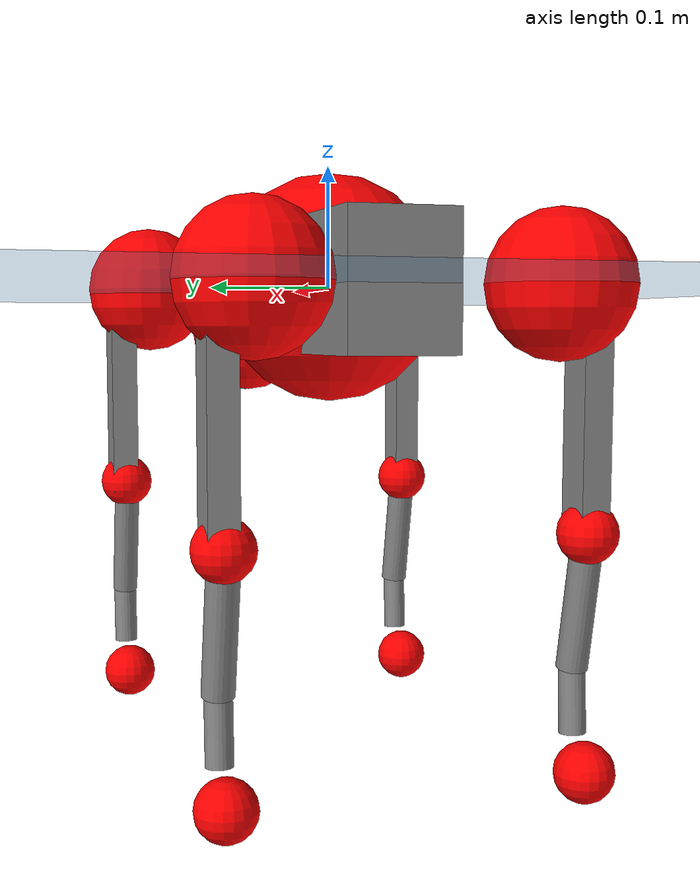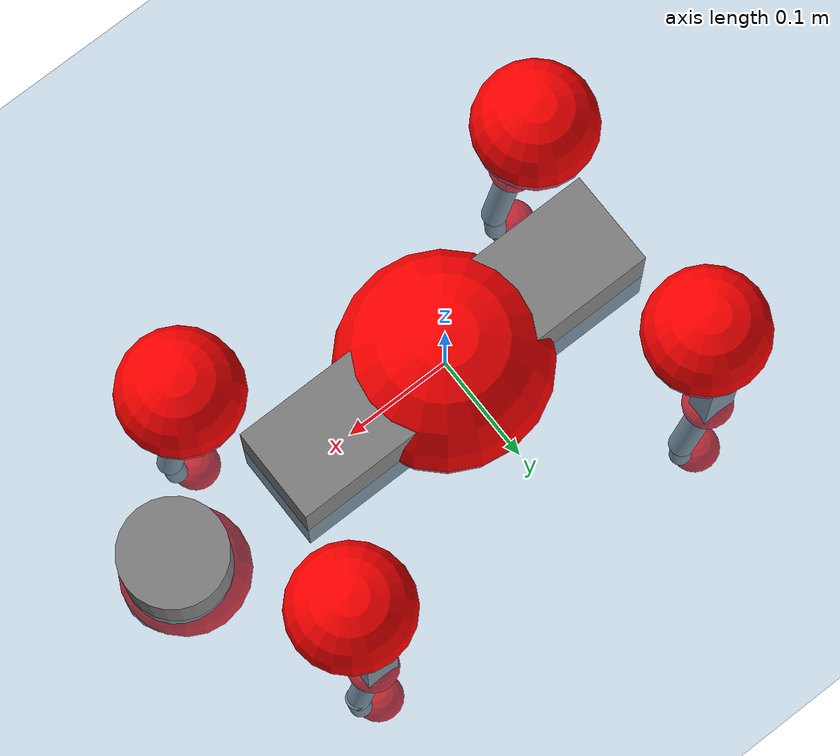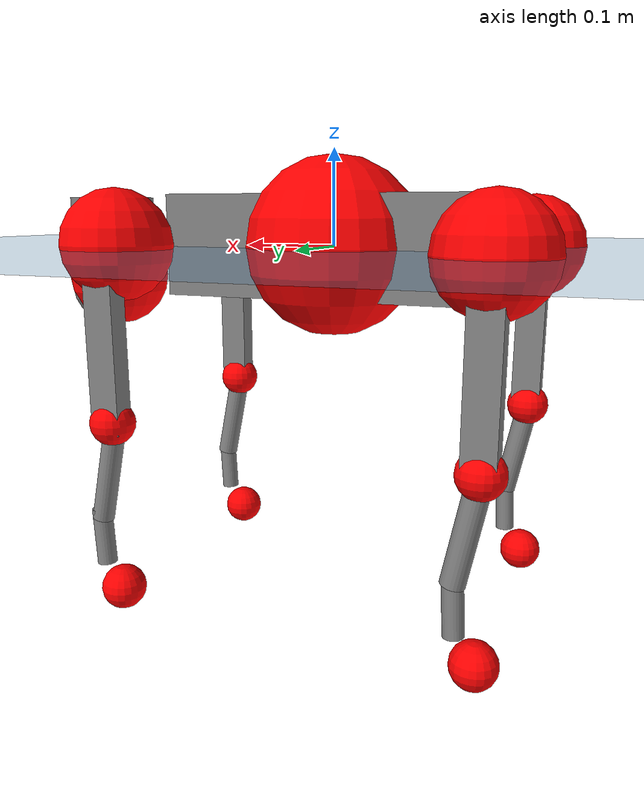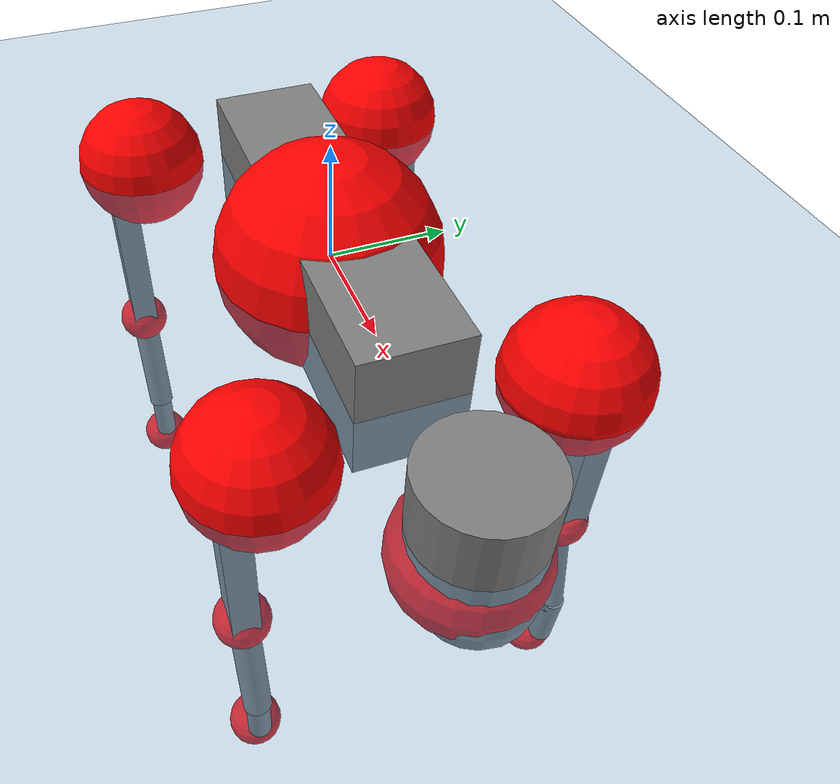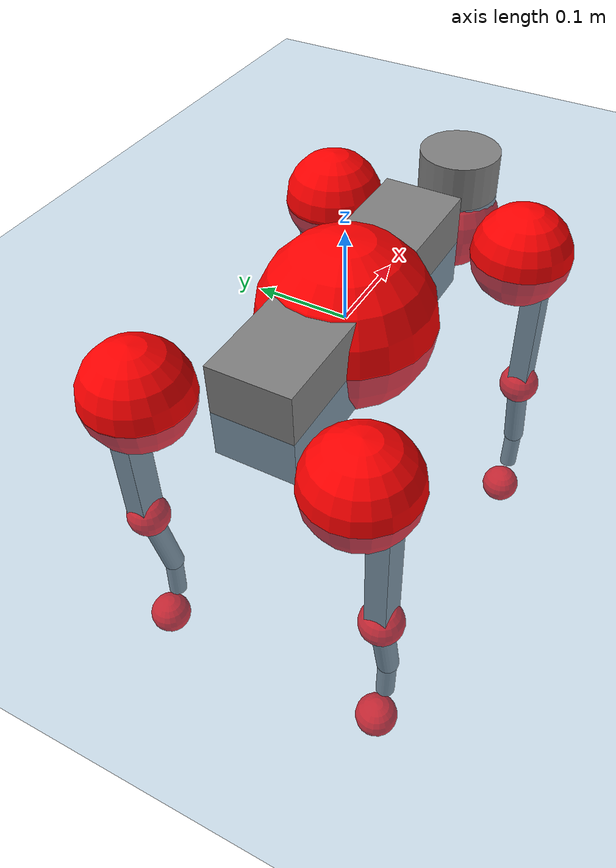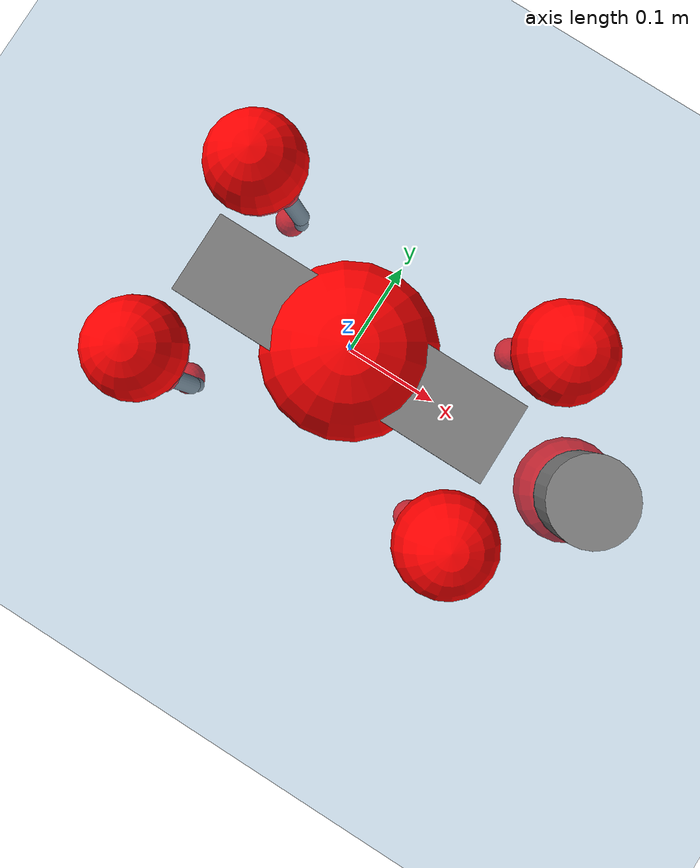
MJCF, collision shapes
<mujoco model="go2">
  <compiler angle="radian" assetdir="assets" balanceinertia="true" inertiafromgeom="false"/>

  <option timestep="0.005" density="1.2" viscosity="2e-05"/>

  <size nkey="1"/>

  <visual>
    <quality shadowsize="8192"/>
    <map shadowclip="0.5"/>
  </visual>

  <default>
    <default class="/">
      <geom contype="0" conaffinity="0" group="1" solref="-1000 -80"/>
      <site size="0.01 0.005 0.005" group="5"/>
      <general forcelimited="true" biastype="affine" gainprm="20" biasprm="0 -20 -0.5"/>
      <default class="go2">
        <joint armature="0.01" damping="0.01" frictionloss="0.2"/>
        <geom condim="1" margin="0.001"/>
        <default class="visual">
          <geom type="mesh" group="2"/>
        </default>
        <default class="collision">
          <geom group="3"/>
          <default class="foot">
            <geom size="0.022 0 0" condim="6" priority="1" friction="0.8 0.02 0.01" solimp="0.015 1 0.022"/>
          </default>
        </default>
        <default class="reward_collision_sphere">
          <geom group="5" rgba="1 0 0 1"/>
        </default>
      </default>
    </default>
  </default>

  <asset>
    <texture type="skybox" colorspace="auto" name="//unnamed_texture_0" builtin="gradient" rgb1="0.95 0.95 0.95" rgb2="0.95 0.95 0.95" width="100" height="600"/>
    <texture type="2d" colorspace="auto" name="texplane" builtin="checker" rgb1="0.345 0.575 0.748" rgb2="0.345 0.575 0.748" markrgb="1 1 1" width="512" height="512"/>
    <material name="MatPlane" class="/" texture="texplane" texuniform="true" texrepeat="2 2" specular="0.9"/>
    <material name="metal" class="/" rgba="0.9 0.95 0.95 1"/>
    <material name="black" class="/" rgba="0 0 0 1"/>
    <material name="white" class="/"/>
    <material name="gray" class="/" rgba="0.671705 0.692426 0.77427 1"/>
    <mesh name="base_0" class="/" file="base_0.obj"/>
    <mesh name="base_1" class="/" file="base_1.obj"/>
    <mesh name="base_2" class="/" file="base_2.obj"/>
    <mesh name="base_3" class="/" file="base_3.obj"/>
    <mesh name="base_4" class="/" file="base_4.obj"/>
    <mesh name="hip_0" class="/" file="hip_0.obj"/>
    <mesh name="hip_1" class="/" file="hip_1.obj"/>
    <mesh name="thigh_0" class="/" file="thigh_0.obj"/>
    <mesh name="thigh_1" class="/" file="thigh_1.obj"/>
    <mesh name="thigh_mirror_0" class="/" file="thigh_mirror_0.obj"/>
    <mesh name="thigh_mirror_1" class="/" file="thigh_mirror_1.obj"/>
    <mesh name="calf_0" class="/" file="calf_0.obj"/>
    <mesh name="calf_1" class="/" file="calf_1.obj"/>
    <mesh name="calf_mirror_0" class="/" file="calf_mirror_0.obj"/>
    <mesh name="calf_mirror_1" class="/" file="calf_mirror_1.obj"/>
    <mesh name="foot" class="/" file="foot.obj"/>
  </asset>

  <worldbody>
    <geom name="floor" class="/" size="100 100 0.125" type="plane" group="0" material="MatPlane"/>
    <light name="toplight_shadow" class="/" pos="0 0 5" dir="0.0990148 0.0990148 -0.990148" type="directional" ambient="0.04 0.04 0.04" diffuse="0.55 0.55 0.55" specular="0.12 0.12 0.12"/>
    <light name="toplight_fill" class="/" pos="0 0 5" dir="0.0990148 0.0990148 -0.990148" type="directional" castshadow="false" ambient="0.04 0.04 0.04" diffuse="0.3 0.3 0.3" specular="0.08 0.08 0.08"/>
    <body name="trunk" childclass="go2" pos="-9.71655e-05 -0.0013161 0.000548355" quat="1 -7.06558e-06 -1.13328e-06 3.73099e-05">
      <inertial pos="0.0196251 -0.00172399 -0.00463705" quat="-0.0102553 0.713448 -0.0100799 0.700561" mass="5.74566" diaginertia="0.0974318 0.0921535 0.0114932"/>
      <joint name="//unnamed_joint_0" type="free" armature="0" damping="0" frictionloss="0"/>
      <geom name="//unnamed_geom_1" class="visual" material="black" mesh="base_0"/>
      <geom name="//unnamed_geom_2" class="visual" material="black" mesh="base_1"/>
      <geom name="//unnamed_geom_3" class="visual" material="black" mesh="base_2"/>
      <geom name="//unnamed_geom_4" class="visual" material="white" mesh="base_3"/>
      <geom name="//unnamed_geom_5" class="visual" material="gray" mesh="base_4"/>
      <geom name="trunk_1" class="collision" size="0.17735 0.0440783 0.0537425" type="box"/>
      <geom name="trunk_2" class="collision" size="0.0471425 0.0424283" pos="0.279381 0 0.00860538" type="cylinder"/>
      <geom name="trunk_3" class="collision" size="0.044314" pos="0.287223 0 -0.0516323"/>
      <geom name="//unnamed_geom_9" class="reward_collision_sphere" size="0.094285"/>
      <geom name="//unnamed_geom_10" class="reward_collision_sphere" size="0.056571" pos="0.27448 0 -0.0387242"/>
      <site name="imu" pos="-0.0192931 -0.000486134 0.0298755" size="0.0094285"/>
      <camera name="track" pos="0 -1.97546 0" quat="0.707107 0.707107 0 0" mode="trackcom"/>
      <camera name="ego_camera" pos="0.305849 0 0.0387242" quat="-0.5 -0.5 0.5 0.5"/>
      <body name="FL_hip" pos="0.189581 0.0485398 0.00296084" quat="1 -0.00051614 -0.000322532 0.000399583">
        <inertial pos="-0.00524522 0.00216278 -0.000231166" quat="0.496454 0.499875 0.503808 0.499835" mass="0.560437" diaginertia="0.000799318 0.000550012 0.00022805"/>
        <joint name="FL_hip_joint" pos="0 0 0" axis="0.999999 0.00149796 -0.00056141" stiffness="0.0138892" range="-0.997914 1.04111" armature="0.0092145" damping="0" frictionloss="0.194355"/>
        <geom name="//unnamed_geom_11" class="visual" material="metal" mesh="hip_0"/>
        <geom name="//unnamed_geom_12" class="visual" material="gray" mesh="hip_1"/>
        <geom name="//unnamed_geom_13" class="collision" size="0.0433711 0.018857" pos="0 0.0790183 0" quat="0.707107 0.707107 0 0" type="cylinder"/>
        <geom name="//unnamed_geom_14" class="reward_collision_sphere" size="0.056571" pos="0 0.069141 0"/>
        <body name="FL_thigh" pos="-0.000392147 0.0966039 0.00229963" quat="1 -0.000395395 0.000257157 -7.5609e-05">
          <inertial pos="-0.00302618 -0.0217276 -0.0281535" quat="0.824694 0.0826406 -0.0178351 0.559224" mass="0.9664" diaginertia="0.00544167 0.00550351 0.000421536"/>
          <joint name="FL_thigh_joint" pos="0 0 0" axis="0.0121663 0.999913 -0.00515878" stiffness="0.00668297" range="-1.57914 3.53781" armature="0.0101832" damping="0.00567196" frictionloss="0.178934"/>
          <geom name="//unnamed_geom_15" class="visual" material="metal" mesh="thigh_0"/>
          <geom name="//unnamed_geom_16" class="visual" material="gray" mesh="thigh_1"/>
          <geom name="//unnamed_geom_17" class="collision" size="0.100414 0.0115499 0.0160285" pos="0 0 -0.0916473" quat="0.707107 0 0.707107 0" type="box"/>
          <body name="FL_calf" pos="0.000596713 -0.00293396 -0.182508" quat="1 5.09949e-05 0.000101741 6.61485e-05">
            <inertial pos="0.00676774 -0.000666746 -0.123769" quat="0.710291 0.0011343 -0.00449486 0.703892" mass="0.201481" diaginertia="0.00132891 0.00141693 2.43279e-05"/>
            <joint name="FL_calf_joint" pos="0 0 0" axis="0.00714977 0.999972 0.00213932" stiffness="0.000724282" range="-2.77248 -0.842437" armature="0.00932239" damping="0.00270901" frictionloss="0.189039"/>
            <geom name="//unnamed_geom_18" class="visual" material="gray" mesh="calf_0"/>
            <geom name="//unnamed_geom_19" class="visual" material="black" mesh="calf_1"/>
            <geom name="FL_calf0" class="collision" size="0.0113142 0.056571" pos="0.00784228 0 -0.0516323" quat="0.994493 0 -0.104807 0" type="cylinder"/>
            <geom name="//unnamed_geom_21" class="collision" size="0.0103714 0.0306426" pos="0.0196057 0 -0.12736" quat="0.999688 0 0.0249974 0" type="cylinder"/>
            <geom name="//unnamed_geom_22" class="visual" pos="0 0 -0.183295" quat="1 0 0 0" material="black" mesh="foot"/>
            <geom name="FL_foot" class="foot" size="0.0173698" pos="-0.00196057 0 -0.183295"/>
            <geom name="//unnamed_geom_24" class="reward_collision_sphere" size="0.0235713"/>
            <geom name="//unnamed_geom_25" class="reward_collision_sphere" size="0.0235713" pos="-0.00196057 0 -0.183295"/>
            <site name="FL_foot" class="foot" pos="-0.00196057 0 -0.183295" size="0.0094285"/>
          </body>
        </body>
      </body>
      <body name="FR_hip" pos="0.189378 -0.046048 -0.0015203" quat="1 0.000140724 -2.69429e-05 7.52503e-05">
        <inertial pos="-0.00415973 -0.0017994 -0.00140184" quat="0.499787 0.504789 0.497975 0.497415" mass="0.558245" diaginertia="0.000816064 0.000546146 0.000232267"/>
        <joint name="FR_hip_joint" pos="0 0 0" axis="0.999999 -0.00138662 0.000317224" stiffness="0.00535198" range="-1.04921 1.03847" armature="0.00892052" damping="0.0159751" frictionloss="0.178813"/>
        <geom name="//unnamed_geom_26" class="visual" pos="0 1.10803e-09 4.75259e-08" quat="4.63268e-05 1 0 0" material="metal" mesh="hip_0"/>
        <geom name="//unnamed_geom_27" class="visual" pos="0 1.79626e-09 -1.1755e-07" quat="4.63268e-05 1 0 0" material="gray" mesh="hip_1"/>
        <geom name="//unnamed_geom_28" class="collision" size="0.0433711 0.018857" pos="0 -0.0790183 0" quat="0.707107 0.707107 0 0" type="cylinder"/>
        <geom name="//unnamed_geom_29" class="reward_collision_sphere" size="0.056571" pos="0 -0.069141 0"/>
        <body name="FR_thigh" pos="0.00283282 -0.092104 0.00263852" quat="1 -0.000268734 9.08656e-05 -4.87319e-05">
          <inertial pos="-0.00243813 0.0196178 -0.0284559" quat="0.551353 -0.0205349 0.0850795 0.829668" mass="0.996611" diaginertia="0.00553693 0.00561591 0.000428617"/>
          <joint name="FR_thigh_joint" pos="0 0 0" axis="0.000295602 -0.999998 0.00196704" stiffness="0.00381618" range="-3.53795 1.57033" armature="0.00967121" damping="0.0102184" frictionloss="0.189273"/>
          <geom name="//unnamed_geom_30" class="visual" material="metal" mesh="thigh_mirror_0"/>
          <geom name="//unnamed_geom_31" class="visual" material="gray" mesh="thigh_mirror_1"/>
          <geom name="//unnamed_geom_32" class="collision" size="0.100414 0.0115499 0.0160285" pos="0 0 -0.0916473" quat="0.707107 0 0.707107 0" type="box"/>
          <body name="FR_calf" pos="-0.00233847 0.000213248 -0.183523" quat="1 0.000766298 0.000106662 0.000563922">
            <inertial pos="0.00525863 0.000769582 -0.121417" quat="0.702881 -0.0044873 0.000940039 0.711293" mass="0.203584" diaginertia="0.00133767 0.00137885 2.47393e-05"/>
            <joint name="FR_calf_joint" pos="0 0 0" axis="-0.0120702 -0.999923 -0.00302548" range="0.835977 2.72687" armature="0.0104581" damping="0.0214667" frictionloss="0.171433"/>
            <geom name="//unnamed_geom_33" class="visual" material="gray" mesh="calf_mirror_0"/>
            <geom name="//unnamed_geom_34" class="visual" material="black" mesh="calf_mirror_1"/>
            <geom name="FR_calf0" class="collision" size="0.0122571 0.056571" pos="0.00980285 0 -0.0516323" quat="0.995004 0 -0.0998334 0" type="cylinder"/>
            <geom name="//unnamed_geom_36" class="collision" size="0.0103714 0.0306426" pos="0.0196057 0 -0.12736" quat="0.999688 0 0.0249974 0" type="cylinder"/>
            <geom name="//unnamed_geom_37" class="visual" pos="0 0 -0.183295" quat="1 0 0 0" material="black" mesh="foot"/>
            <geom name="FR_foot" class="foot" size="0.0213594" pos="-0.00196057 0 -0.183295"/>
            <geom name="//unnamed_geom_39" class="reward_collision_sphere" size="0.0235713"/>
            <geom name="//unnamed_geom_40" class="reward_collision_sphere" size="0.0235713" pos="-0.00196057 0 -0.183295"/>
            <site name="FR_foot" class="foot" pos="-0.00196057 0 -0.183295" size="0.0094285"/>
          </body>
        </body>
      </body>
      <body name="RL_hip" pos="-0.18926 0.0463315 0.000234108" quat="1 0.000132459 -6.07629e-05 5.92888e-06">
        <inertial pos="0.00546593 0.000683144 9.05047e-05" quat="0.505699 0.499115 0.493067 0.502033" mass="0.555114" diaginertia="0.000793693 0.000553894 0.000224232"/>
        <joint name="RL_hip_joint" pos="0 0 0" axis="-0.999953 0.00968975 0.000937194" stiffness="0.00513096" range="-1.06086 1.06217" armature="0.00949461" damping="0.0104151" frictionloss="0.184825"/>
        <geom name="//unnamed_geom_41" class="visual" pos="-1.04319e-09 0 -2.04489e-07" quat="4.63268e-05 0 1 0" material="metal" mesh="hip_0"/>
        <geom name="//unnamed_geom_42" class="visual" pos="-1.69113e-09 0 -1.81352e-07" quat="4.63268e-05 0 1 0" material="gray" mesh="hip_1"/>
        <geom name="//unnamed_geom_43" class="collision" size="0.0433711 0.018857" pos="0 0.0790183 0" quat="0.707107 0.707107 0 0" type="cylinder"/>
        <geom name="//unnamed_geom_44" class="reward_collision_sphere" size="0.056571" pos="0 0.069141 0"/>
        <body name="RL_thigh" pos="-0.000314156 0.0941611 -0.00178625" quat="1 9.27633e-05 -1.57325e-05 -0.000205366">
          <inertial pos="-0.00335249 -0.0224521 -0.0305175" quat="0.829514 0.0847163 -0.0200419 0.55166" mass="0.983688" diaginertia="0.00537613 0.00536287 0.000406656"/>
          <joint name="RL_thigh_joint" pos="0 0 0" axis="0.00390818 0.999973 -0.00621279" stiffness="5.83593e-05" range="-0.547919 4.53973" armature="0.00984276" damping="0" frictionloss="0.183485"/>
          <geom name="//unnamed_geom_45" class="visual" material="metal" mesh="thigh_0"/>
          <geom name="//unnamed_geom_46" class="visual" material="gray" mesh="thigh_1"/>
          <geom name="//unnamed_geom_47" class="collision" size="0.100414 0.0115499 0.0160285" pos="0 0 -0.0916473" quat="0.707107 0 0.707107 0" type="box"/>
          <body name="RL_calf" pos="-0.000446649 -0.00312856 -0.18427" quat="1 -0.000213006 -0.000256573 0.000286752">
            <inertial pos="0.00560408 -0.000669555 -0.121784" quat="0.71084 0.00314063 -0.00372119 0.703337" mass="0.203124" diaginertia="0.00138369 0.00137167 2.5094e-05"/>
            <joint name="RL_calf_joint" pos="0 0 0" axis="-0.00267357 0.999993 0.00263051" range="-2.67188 -0.860757" armature="0.00941681" damping="0.00671094" frictionloss="0.191881"/>
            <geom name="//unnamed_geom_48" class="visual" material="gray" mesh="calf_0"/>
            <geom name="//unnamed_geom_49" class="visual" material="black" mesh="calf_1"/>
            <geom name="RL_calf0" class="collision" size="0.0122571 0.056571" pos="0.00980285 0 -0.0516323" quat="0.995004 0 -0.0998334 0" type="cylinder"/>
            <geom name="//unnamed_geom_51" class="collision" size="0.0103714 0.0306426" pos="0.0196057 0 -0.12736" quat="0.999688 0 0.0249974 0" type="cylinder"/>
            <geom name="//unnamed_geom_52" class="visual" pos="0 0 -0.183295" quat="1 0 0 0" material="black" mesh="foot"/>
            <geom name="RL_foot" class="foot" size="0.0172419" pos="-0.00196057 0 -0.183295"/>
            <geom name="//unnamed_geom_54" class="reward_collision_sphere" size="0.0235713"/>
            <geom name="//unnamed_geom_55" class="reward_collision_sphere" size="0.0235713" pos="-0.00196057 0 -0.183295"/>
            <site name="RL_foot" class="foot" pos="-0.00196057 0 -0.183295" size="0.0094285"/>
          </body>
        </body>
      </body>
      <body name="RR_hip" pos="-0.189921 -0.0471309 -0.00189575" quat="1 0.000114244 -0.000427904 0.000716037">
        <inertial pos="0.00459397 -8.27894e-05 -0.000433912" quat="0.500245 0.499735 0.496429 0.503566" mass="0.569486" diaginertia="0.00081137 0.00055283 0.000232642"/>
        <joint name="RR_hip_joint" pos="0 0 0" axis="-0.99995 0.00689867 0.00728634" range="-1.05416 1.00458" armature="0.00938791" damping="0.00531738" frictionloss="0.193222"/>
        <geom name="//unnamed_geom_56" class="visual" pos="1.04344e-09 1.10803e-09 -2.52014e-07" quat="2.14617e-09 4.63268e-05 4.63268e-05 -1" material="metal" mesh="hip_0"/>
        <geom name="//unnamed_geom_57" class="visual" pos="1.69049e-09 1.79626e-09 -6.38026e-08" quat="2.14617e-09 4.63268e-05 4.63268e-05 -1" material="gray" mesh="hip_1"/>
        <geom name="//unnamed_geom_58" class="collision" size="0.0433711 0.018857" pos="0 -0.0790183 0" quat="0.707107 0.707107 0 0" type="cylinder"/>
        <geom name="//unnamed_geom_59" class="reward_collision_sphere" size="0.056571" pos="0 -0.069141 0"/>
        <body name="RR_thigh" pos="0.000135301 -0.0933015 -0.000152564" quat="1 0.000288443 -0.000812442 -0.000419417">
          <inertial pos="-0.00330942 0.0199626 -0.0280004" quat="0.55289 -0.0181252 0.0831501 0.828897" mass="0.967874" diaginertia="0.00541662 0.00548423 0.00041442"/>
          <joint name="RR_thigh_joint" pos="0 0 0" axis="0.00476357 -0.999964 -0.00700992" range="-4.53597 0.523164" armature="0.00922258" damping="0.0187229" frictionloss="0.186492"/>
          <geom name="//unnamed_geom_60" class="visual" material="metal" mesh="thigh_mirror_0"/>
          <geom name="//unnamed_geom_61" class="visual" material="gray" mesh="thigh_mirror_1"/>
          <geom name="//unnamed_geom_62" class="collision" size="0.100414 0.0115499 0.0160285" pos="0 0 -0.0916473" quat="0.707107 0 0.707107 0" type="box"/>
          <body name="RR_calf" pos="-0.00201522 -0.000889068 -0.184421" quat="1 0.00011195 0.000200864 0.000157807">
            <inertial pos="0.00848379 0.000634854 -0.121185" quat="0.704507 0.000230931 0.00187207 0.709695" mass="0.200251" diaginertia="0.00137992 0.00138721 2.48298e-05"/>
            <joint name="RR_calf_joint" pos="0 0 0" axis="0.00444121 -0.999954 0.00848716" range="0.807959 2.77182" armature="0.0084459" damping="0.00661455" frictionloss="0.185986"/>
            <geom name="//unnamed_geom_63" class="visual" material="gray" mesh="calf_mirror_0"/>
            <geom name="//unnamed_geom_64" class="visual" material="black" mesh="calf_mirror_1"/>
            <geom name="RR_calf0" class="collision" size="0.0122571 0.056571" pos="0.00980285 0 -0.0516323" quat="0.995004 0 -0.0998334 0" type="cylinder"/>
            <geom name="//unnamed_geom_66" class="collision" size="0.0103714 0.0306426" pos="0.0196057 0 -0.12736" quat="0.999688 0 0.0249974 0" type="cylinder"/>
            <geom name="//unnamed_geom_67" class="visual" pos="0 0 -0.183295" quat="1 0 0 0" material="black" mesh="foot"/>
            <geom name="RR_foot" class="foot" size="0.0199865" pos="-0.00196057 0 -0.183295"/>
            <geom name="//unnamed_geom_69" class="reward_collision_sphere" size="0.0235713"/>
            <geom name="//unnamed_geom_70" class="reward_collision_sphere" size="0.0235713" pos="-0.00196057 0 -0.183295"/>
            <site name="RR_foot" class="foot" pos="-0.00196057 0 -0.183295" size="0.0094285"/>
          </body>
        </body>
      </body>
    </body>
  </worldbody>

  <contact>
    <pair class="/" geom1="floor" geom2="FL_foot" name="//unnamed_contact_0"/>
    <pair class="/" geom1="floor" geom2="FR_foot" name="//unnamed_contact_1"/>
    <pair class="/" geom1="floor" geom2="RL_foot" name="//unnamed_contact_2"/>
    <pair class="/" geom1="floor" geom2="RR_foot" name="//unnamed_contact_3"/>
  </contact>

  <actuator>
    <general name="FL_hip" class="/" joint="FL_hip_joint" forcerange="-24.4408 24.4408" gainprm="20.0386" biasprm="0 -20.0386 -0.459512"/>
    <general name="FL_thigh" class="/" joint="FL_thigh_joint" forcerange="-22.0515 22.0515" gainprm="20.0386" biasprm="0 -20.0386 -0.459512"/>
    <general name="FL_calf" class="/" joint="FL_calf_joint" forcerange="-44.2559 44.2559" gainprm="20.0386" biasprm="0 -20.0386 -0.459512"/>
    <general name="FR_hip" class="/" joint="FR_hip_joint" forcerange="-24.2245 24.2245" gainprm="20.0386" biasprm="0 -20.0386 -0.459512"/>
    <general name="FR_thigh" class="/" joint="FR_thigh_joint" forcerange="-24.2369 24.2369" gainprm="20.0386" biasprm="0 -20.0386 -0.459512"/>
    <general name="FR_calf" class="/" joint="FR_calf_joint" forcerange="-43.7123 43.7123" gainprm="20.0386" biasprm="0 -20.0386 -0.459512"/>
    <general name="RL_hip" class="/" joint="RL_hip_joint" forcerange="-22.9438 22.9438" gainprm="20.0386" biasprm="0 -20.0386 -0.459512"/>
    <general name="RL_thigh" class="/" joint="RL_thigh_joint" forcerange="-22.469 22.469" gainprm="20.0386" biasprm="0 -20.0386 -0.459512"/>
    <general name="RL_calf" class="/" joint="RL_calf_joint" forcerange="-43.0209 43.0209" gainprm="20.0386" biasprm="0 -20.0386 -0.459512"/>
    <general name="RR_hip" class="/" joint="RR_hip_joint" forcerange="-20.3094 20.3094" gainprm="20.0386" biasprm="0 -20.0386 -0.459512"/>
    <general name="RR_thigh" class="/" joint="RR_thigh_joint" forcerange="-22.1177 22.1177" gainprm="20.0386" biasprm="0 -20.0386 -0.459512"/>
    <general name="RR_calf" class="/" joint="RR_calf_joint" forcerange="-42.7371 42.7371" gainprm="20.0386" biasprm="0 -20.0386 -0.459512"/>
  </actuator>

  <sensor>
    <gyro site="imu" name="imu_angular_velocity"/>
    <velocimeter site="imu" name="imu_linear_velocity"/>
    <framelinvel objtype="site" objname="FL_foot" name="FL_foot_global_linear_velocity"/>
    <framelinvel objtype="site" objname="FR_foot" name="FR_foot_global_linear_velocity"/>
    <framelinvel objtype="site" objname="RL_foot" name="RL_foot_global_linear_velocity"/>
    <framelinvel objtype="site" objname="RR_foot" name="RR_foot_global_linear_velocity"/>
  </sensor>

  <keyframe>
    <key name="home" qpos="0 0 0.325 1 0 0 0 0.1 0.8 -1.5 -0.1 -0.8 1.5 -0.1 0.8 -1.5 0.1 -0.8 1.5"/>
  </keyframe>
</mujoco>
